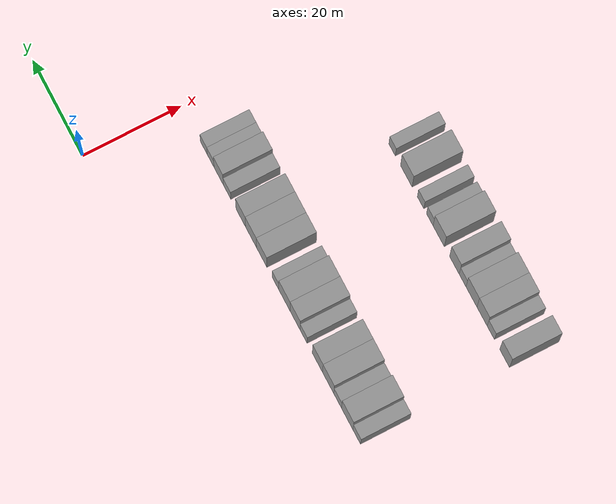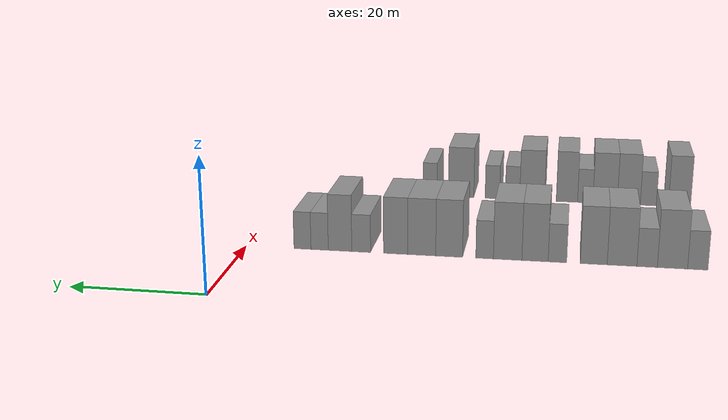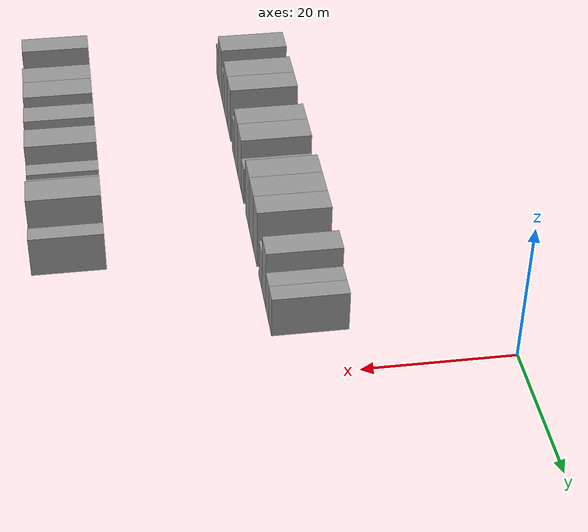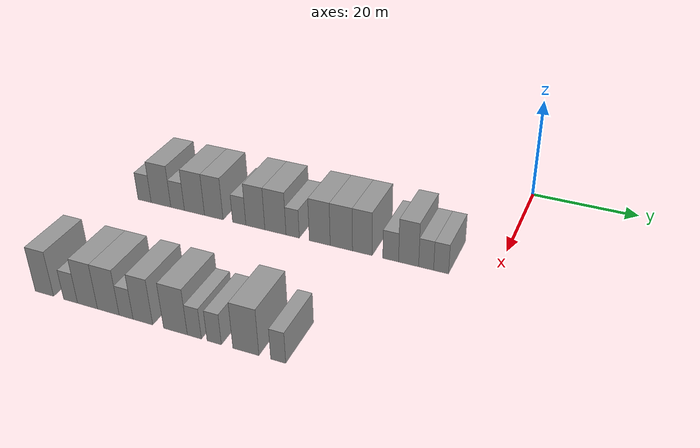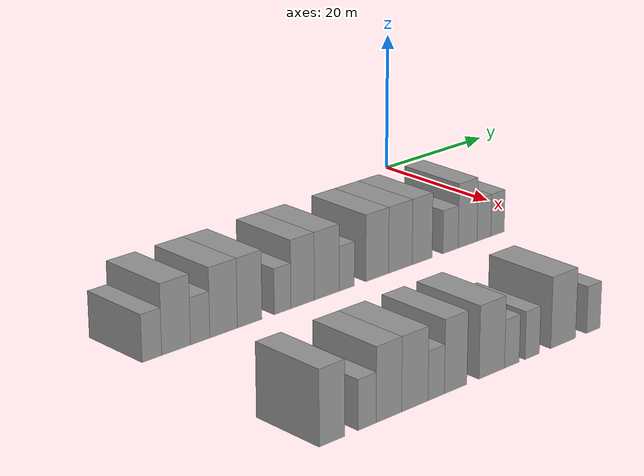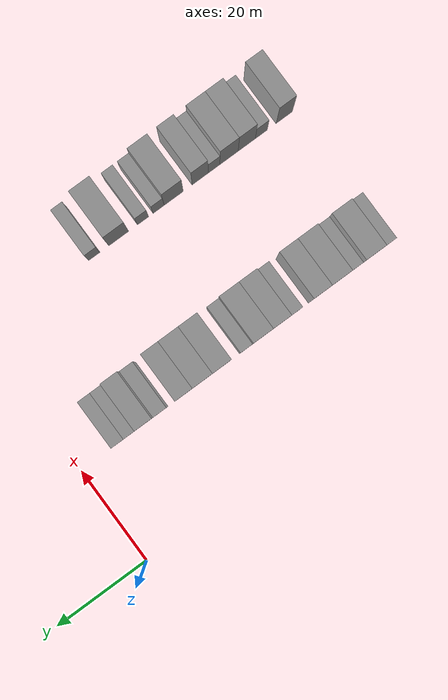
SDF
<sdf version="1.6">
 <world name="default">
  <model name="building_41">
   <static>1</static>
   <pose>25.0000 -68.2301 0 0.000000 0.000000 0.000000</pose>
   <link name="link">
    <pose>0 0 3.00 0 0 0</pose>
    <collision name="collision"><geometry><box><size>10.0000 2.9125 6.0000</size></box></geometry></collision>
    <visual name="visual">
     <cast_shadows>0</cast_shadows>
     <geometry><box><size>10.0000 2.9125 6.0000</size></box></geometry>
     <material>
      <script>
       <uri>model://grey_wall/materials/scripts</uri>
       <uri>model://grey_wall/materials/textures</uri>
       <name>vrc/grey_wall</name>
      </script>
     </material>
    </visual>
   </link>
  </model>
  <model name="building_42">
   <static>1</static>
   <pose>25.0000 -64.6002 0 0.000000 0.000000 0.000000</pose>
   <link name="link">
    <pose>0 0 4.50 0 0 0</pose>
    <collision name="collision"><geometry><box><size>10.0000 4.3473 9.0000</size></box></geometry></collision>
    <visual name="visual">
     <cast_shadows>0</cast_shadows>
     <geometry><box><size>10.0000 4.3473 9.0000</size></box></geometry>
     <material>
      <script>
       <uri>model://grey_wall/materials/scripts</uri>
       <uri>model://grey_wall/materials/textures</uri>
       <name>vrc/grey_wall</name>
      </script>
     </material>
    </visual>
   </link>
  </model>
  <model name="building_43">
   <static>1</static>
   <pose>25.0000 -60.9436 0 0.000000 0.000000 0.000000</pose>
   <link name="link">
    <pose>0 0 3.00 0 0 0</pose>
    <collision name="collision"><geometry><box><size>10.0000 2.9658 6.0000</size></box></geometry></collision>
    <visual name="visual">
     <cast_shadows>0</cast_shadows>
     <geometry><box><size>10.0000 2.9658 6.0000</size></box></geometry>
     <material>
      <script>
       <uri>model://grey_wall/materials/scripts</uri>
       <uri>model://grey_wall/materials/textures</uri>
       <name>vrc/grey_wall</name>
      </script>
     </material>
    </visual>
   </link>
  </model>
  <model name="building_44">
   <static>1</static>
   <pose>25.0000 -57.2995 0 0.000000 0.000000 0.000000</pose>
   <link name="link">
    <pose>0 0 4.50 0 0 0</pose>
    <collision name="collision"><geometry><box><size>10.0000 4.3224 9.0000</size></box></geometry></collision>
    <visual name="visual">
     <cast_shadows>0</cast_shadows>
     <geometry><box><size>10.0000 4.3224 9.0000</size></box></geometry>
     <material>
      <script>
       <uri>model://grey_wall/materials/scripts</uri>
       <uri>model://grey_wall/materials/textures</uri>
       <name>vrc/grey_wall</name>
      </script>
     </material>
    </visual>
   </link>
  </model>
  <model name="building_45">
   <static>1</static>
   <pose>25.0000 -53.1680 0 0.000000 0.000000 0.000000</pose>
   <link name="link">
    <pose>0 0 4.50 0 0 0</pose>
    <collision name="collision"><geometry><box><size>10.0000 3.9408 9.0000</size></box></geometry></collision>
    <visual name="visual">
     <cast_shadows>0</cast_shadows>
     <geometry><box><size>10.0000 3.9408 9.0000</size></box></geometry>
     <material>
      <script>
       <uri>model://grey_wall/materials/scripts</uri>
       <uri>model://grey_wall/materials/textures</uri>
       <name>vrc/grey_wall</name>
      </script>
     </material>
    </visual>
   </link>
  </model>
  <model name="building_46">
   <static>1</static>
   <pose>25.0000 -47.8245 0 0.000000 0.000000 0.000000</pose>
   <link name="link">
    <pose>0 0 3.00 0 0 0</pose>
    <collision name="collision"><geometry><box><size>10.0000 2.7462 6.0000</size></box></geometry></collision>
    <visual name="visual">
     <cast_shadows>0</cast_shadows>
     <geometry><box><size>10.0000 2.7462 6.0000</size></box></geometry>
     <material>
      <script>
       <uri>model://grey_wall/materials/scripts</uri>
       <uri>model://grey_wall/materials/textures</uri>
       <name>vrc/grey_wall</name>
      </script>
     </material>
    </visual>
   </link>
  </model>
  <model name="building_47">
   <static>1</static>
   <pose>25.0000 -44.4998 0 0.000000 0.000000 0.000000</pose>
   <link name="link">
    <pose>0 0 4.50 0 0 0</pose>
    <collision name="collision"><geometry><box><size>10.0000 3.9032 9.0000</size></box></geometry></collision>
    <visual name="visual">
     <cast_shadows>0</cast_shadows>
     <geometry><box><size>10.0000 3.9032 9.0000</size></box></geometry>
     <material>
      <script>
       <uri>model://grey_wall/materials/scripts</uri>
       <uri>model://grey_wall/materials/textures</uri>
       <name>vrc/grey_wall</name>
      </script>
     </material>
    </visual>
   </link>
  </model>
  <model name="building_48">
   <static>1</static>
   <pose>25.0000 -40.4102 0 0.000000 0.000000 0.000000</pose>
   <link name="link">
    <pose>0 0 4.50 0 0 0</pose>
    <collision name="collision"><geometry><box><size>10.0000 4.2760 9.0000</size></box></geometry></collision>
    <visual name="visual">
     <cast_shadows>0</cast_shadows>
     <geometry><box><size>10.0000 4.2760 9.0000</size></box></geometry>
     <material>
      <script>
       <uri>model://grey_wall/materials/scripts</uri>
       <uri>model://grey_wall/materials/textures</uri>
       <name>vrc/grey_wall</name>
      </script>
     </material>
    </visual>
   </link>
  </model>
  <model name="building_49">
   <static>1</static>
   <pose>25.0000 -36.9497 0 0.000000 0.000000 0.000000</pose>
   <link name="link">
    <pose>0 0 3.00 0 0 0</pose>
    <collision name="collision"><geometry><box><size>10.0000 2.6450 6.0000</size></box></geometry></collision>
    <visual name="visual">
     <cast_shadows>0</cast_shadows>
     <geometry><box><size>10.0000 2.6450 6.0000</size></box></geometry>
     <material>
      <script>
       <uri>model://grey_wall/materials/scripts</uri>
       <uri>model://grey_wall/materials/textures</uri>
       <name>vrc/grey_wall</name>
      </script>
     </material>
    </visual>
   </link>
  </model>
  <model name="building_50">
   <static>1</static>
   <pose>25.0000 -31.5920 0 0.000000 0.000000 0.000000</pose>
   <link name="link">
    <pose>0 0 4.50 0 0 0</pose>
    <collision name="collision"><geometry><box><size>10.0000 4.0703 9.0000</size></box></geometry></collision>
    <visual name="visual">
     <cast_shadows>0</cast_shadows>
     <geometry><box><size>10.0000 4.0703 9.0000</size></box></geometry>
     <material>
      <script>
       <uri>model://grey_wall/materials/scripts</uri>
       <uri>model://grey_wall/materials/textures</uri>
       <name>vrc/grey_wall</name>
      </script>
     </material>
    </visual>
   </link>
  </model>
  <model name="building_51">
   <static>1</static>
   <pose>25.0000 -27.4132 0 0.000000 0.000000 0.000000</pose>
   <link name="link">
    <pose>0 0 4.50 0 0 0</pose>
    <collision name="collision"><geometry><box><size>10.0000 4.2873 9.0000</size></box></geometry></collision>
    <visual name="visual">
     <cast_shadows>0</cast_shadows>
     <geometry><box><size>10.0000 4.2873 9.0000</size></box></geometry>
     <material>
      <script>
       <uri>model://grey_wall/materials/scripts</uri>
       <uri>model://grey_wall/materials/textures</uri>
       <name>vrc/grey_wall</name>
      </script>
     </material>
    </visual>
   </link>
  </model>
  <model name="building_52">
   <static>1</static>
   <pose>25.0000 -23.4072 0 0.000000 0.000000 0.000000</pose>
   <link name="link">
    <pose>0 0 4.50 0 0 0</pose>
    <collision name="collision"><geometry><box><size>10.0000 3.7247 9.0000</size></box></geometry></collision>
    <visual name="visual">
     <cast_shadows>0</cast_shadows>
     <geometry><box><size>10.0000 3.7247 9.0000</size></box></geometry>
     <material>
      <script>
       <uri>model://grey_wall/materials/scripts</uri>
       <uri>model://grey_wall/materials/textures</uri>
       <name>vrc/grey_wall</name>
      </script>
     </material>
    </visual>
   </link>
  </model>
  <model name="building_53">
   <static>1</static>
   <pose>25.0000 -18.0842 0 0.000000 0.000000 0.000000</pose>
   <link name="link">
    <pose>0 0 3.00 0 0 0</pose>
    <collision name="collision"><geometry><box><size>10.0000 2.9214 6.0000</size></box></geometry></collision>
    <visual name="visual">
     <cast_shadows>0</cast_shadows>
     <geometry><box><size>10.0000 2.9214 6.0000</size></box></geometry>
     <material>
      <script>
       <uri>model://grey_wall/materials/scripts</uri>
       <uri>model://grey_wall/materials/textures</uri>
       <name>vrc/grey_wall</name>
      </script>
     </material>
    </visual>
   </link>
  </model>
  <model name="building_54">
   <static>1</static>
   <pose>25.0000 -14.7906 0 0.000000 0.000000 0.000000</pose>
   <link name="link">
    <pose>0 0 4.50 0 0 0</pose>
    <collision name="collision"><geometry><box><size>10.0000 3.6657 9.0000</size></box></geometry></collision>
    <visual name="visual">
     <cast_shadows>0</cast_shadows>
     <geometry><box><size>10.0000 3.6657 9.0000</size></box></geometry>
     <material>
      <script>
       <uri>model://grey_wall/materials/scripts</uri>
       <uri>model://grey_wall/materials/textures</uri>
       <name>vrc/grey_wall</name>
      </script>
     </material>
    </visual>
   </link>
  </model>
  <model name="building_55">
   <static>1</static>
   <pose>25.0000 -11.6053 0 0.000000 0.000000 0.000000</pose>
   <link name="link">
    <pose>0 0 3.00 0 0 0</pose>
    <collision name="collision"><geometry><box><size>10.0000 2.7048 6.0000</size></box></geometry></collision>
    <visual name="visual">
     <cast_shadows>0</cast_shadows>
     <geometry><box><size>10.0000 2.7048 6.0000</size></box></geometry>
     <material>
      <script>
       <uri>model://grey_wall/materials/scripts</uri>
       <uri>model://grey_wall/materials/textures</uri>
       <name>vrc/grey_wall</name>
      </script>
     </material>
    </visual>
   </link>
  </model>
  <model name="building_56">
   <static>1</static>
   <pose>25.0000 -8.9173 0 0.000000 0.000000 0.000000</pose>
   <link name="link">
    <pose>0 0 3.00 0 0 0</pose>
    <collision name="collision"><geometry><box><size>10.0000 2.6713 6.0000</size></box></geometry></collision>
    <visual name="visual">
     <cast_shadows>0</cast_shadows>
     <geometry><box><size>10.0000 2.6713 6.0000</size></box></geometry>
     <material>
      <script>
       <uri>model://grey_wall/materials/scripts</uri>
       <uri>model://grey_wall/materials/textures</uri>
       <name>vrc/grey_wall</name>
      </script>
     </material>
    </visual>
   </link>
  </model>
  <model name="building_153">
   <static>1</static>
   <pose>55.0000 -67.8961 0 0.000000 0.000000 0.000000</pose>
   <link name="link">
    <pose>0 0 4.50 0 0 0</pose>
    <collision name="collision"><geometry><box><size>10.0000 3.6994 9.0000</size></box></geometry></collision>
    <visual name="visual">
     <cast_shadows>0</cast_shadows>
     <geometry><box><size>10.0000 3.6994 9.0000</size></box></geometry>
     <material>
      <script>
       <uri>model://grey_wall/materials/scripts</uri>
       <uri>model://grey_wall/materials/textures</uri>
       <name>vrc/grey_wall</name>
      </script>
     </material>
    </visual>
   </link>
  </model>
  <model name="building_154">
   <static>1</static>
   <pose>55.0000 -62.6760 0 0.000000 0.000000 0.000000</pose>
   <link name="link">
    <pose>0 0 3.00 0 0 0</pose>
    <collision name="collision"><geometry><box><size>10.0000 2.7408 6.0000</size></box></geometry></collision>
    <visual name="visual">
     <cast_shadows>0</cast_shadows>
     <geometry><box><size>10.0000 2.7408 6.0000</size></box></geometry>
     <material>
      <script>
       <uri>model://grey_wall/materials/scripts</uri>
       <uri>model://grey_wall/materials/textures</uri>
       <name>vrc/grey_wall</name>
      </script>
     </material>
    </visual>
   </link>
  </model>
  <model name="building_155">
   <static>1</static>
   <pose>55.0000 -59.3603 0 0.000000 0.000000 0.000000</pose>
   <link name="link">
    <pose>0 0 4.50 0 0 0</pose>
    <collision name="collision"><geometry><box><size>10.0000 3.8905 9.0000</size></box></geometry></collision>
    <visual name="visual">
     <cast_shadows>0</cast_shadows>
     <geometry><box><size>10.0000 3.8905 9.0000</size></box></geometry>
     <material>
      <script>
       <uri>model://grey_wall/materials/scripts</uri>
       <uri>model://grey_wall/materials/textures</uri>
       <name>vrc/grey_wall</name>
      </script>
     </material>
    </visual>
   </link>
  </model>
  <model name="building_156">
   <static>1</static>
   <pose>55.0000 -55.3364 0 0.000000 0.000000 0.000000</pose>
   <link name="link">
    <pose>0 0 4.50 0 0 0</pose>
    <collision name="collision"><geometry><box><size>10.0000 4.1573 9.0000</size></box></geometry></collision>
    <visual name="visual">
     <cast_shadows>0</cast_shadows>
     <geometry><box><size>10.0000 4.1573 9.0000</size></box></geometry>
     <material>
      <script>
       <uri>model://grey_wall/materials/scripts</uri>
       <uri>model://grey_wall/materials/textures</uri>
       <name>vrc/grey_wall</name>
      </script>
     </material>
    </visual>
   </link>
  </model>
  <model name="building_157">
   <static>1</static>
   <pose>55.0000 -51.9467 0 0.000000 0.000000 0.000000</pose>
   <link name="link">
    <pose>0 0 3.00 0 0 0</pose>
    <collision name="collision"><geometry><box><size>10.0000 2.6221 6.0000</size></box></geometry></collision>
    <visual name="visual">
     <cast_shadows>0</cast_shadows>
     <geometry><box><size>10.0000 2.6221 6.0000</size></box></geometry>
     <material>
      <script>
       <uri>model://grey_wall/materials/scripts</uri>
       <uri>model://grey_wall/materials/textures</uri>
       <name>vrc/grey_wall</name>
      </script>
     </material>
    </visual>
   </link>
  </model>
  <model name="building_158">
   <static>1</static>
   <pose>55.0000 -48.8045 0 0.000000 0.000000 0.000000</pose>
   <link name="link">
    <pose>0 0 4.50 0 0 0</pose>
    <collision name="collision"><geometry><box><size>10.0000 3.6623 9.0000</size></box></geometry></collision>
    <visual name="visual">
     <cast_shadows>0</cast_shadows>
     <geometry><box><size>10.0000 3.6623 9.0000</size></box></geometry>
     <material>
      <script>
       <uri>model://grey_wall/materials/scripts</uri>
       <uri>model://grey_wall/materials/textures</uri>
       <name>vrc/grey_wall</name>
      </script>
     </material>
    </visual>
   </link>
  </model>
  <model name="building_159">
   <static>1</static>
   <pose>55.0000 -42.8194 0 0.000000 0.000000 0.000000</pose>
   <link name="link">
    <pose>0 0 4.50 0 0 0</pose>
    <collision name="collision"><geometry><box><size>10.0000 4.3080 9.0000</size></box></geometry></collision>
    <visual name="visual">
     <cast_shadows>0</cast_shadows>
     <geometry><box><size>10.0000 4.3080 9.0000</size></box></geometry>
     <material>
      <script>
       <uri>model://grey_wall/materials/scripts</uri>
       <uri>model://grey_wall/materials/textures</uri>
       <name>vrc/grey_wall</name>
      </script>
     </material>
    </visual>
   </link>
  </model>
  <model name="building_160">
   <static>1</static>
   <pose>55.0000 -39.4052 0 0.000000 0.000000 0.000000</pose>
   <link name="link">
    <pose>0 0 3.00 0 0 0</pose>
    <collision name="collision"><geometry><box><size>10.0000 2.5203 6.0000</size></box></geometry></collision>
    <visual name="visual">
     <cast_shadows>0</cast_shadows>
     <geometry><box><size>10.0000 2.5203 6.0000</size></box></geometry>
     <material>
      <script>
       <uri>model://grey_wall/materials/scripts</uri>
       <uri>model://grey_wall/materials/textures</uri>
       <name>vrc/grey_wall</name>
      </script>
     </material>
    </visual>
   </link>
  </model>
  <model name="building_161">
   <static>1</static>
   <pose>55.0000 -35.8841 0 0.000000 0.000000 0.000000</pose>
   <link name="link">
    <pose>0 0 3.00 0 0 0</pose>
    <collision name="collision"><geometry><box><size>10.0000 2.5219 6.0000</size></box></geometry></collision>
    <visual name="visual">
     <cast_shadows>0</cast_shadows>
     <geometry><box><size>10.0000 2.5219 6.0000</size></box></geometry>
     <material>
      <script>
       <uri>model://grey_wall/materials/scripts</uri>
       <uri>model://grey_wall/materials/textures</uri>
       <name>vrc/grey_wall</name>
      </script>
     </material>
    </visual>
   </link>
  </model>
  <model name="building_162">
   <static>1</static>
   <pose>55.0000 -30.3880 0 0.000000 0.000000 0.000000</pose>
   <link name="link">
    <pose>0 0 4.50 0 0 0</pose>
    <collision name="collision"><geometry><box><size>10.0000 4.4705 9.0000</size></box></geometry></collision>
    <visual name="visual">
     <cast_shadows>0</cast_shadows>
     <geometry><box><size>10.0000 4.4705 9.0000</size></box></geometry>
     <material>
      <script>
       <uri>model://grey_wall/materials/scripts</uri>
       <uri>model://grey_wall/materials/textures</uri>
       <name>vrc/grey_wall</name>
      </script>
     </material>
    </visual>
   </link>
  </model>
  <model name="building_163">
   <static>1</static>
   <pose>55.0000 -24.8953 0 0.000000 0.000000 0.000000</pose>
   <link name="link">
    <pose>0 0 3.00 0 0 0</pose>
    <collision name="collision"><geometry><box><size>10.0000 2.5149 6.0000</size></box></geometry></collision>
    <visual name="visual">
     <cast_shadows>0</cast_shadows>
     <geometry><box><size>10.0000 2.5149 6.0000</size></box></geometry>
     <material>
      <script>
       <uri>model://grey_wall/materials/scripts</uri>
       <uri>model://grey_wall/materials/textures</uri>
       <name>vrc/grey_wall</name>
      </script>
     </material>
    </visual>
   </link>
  </model>
 </world>
</sdf>
